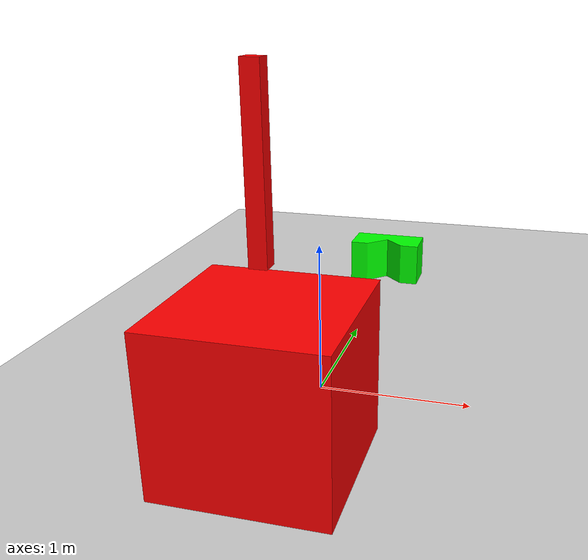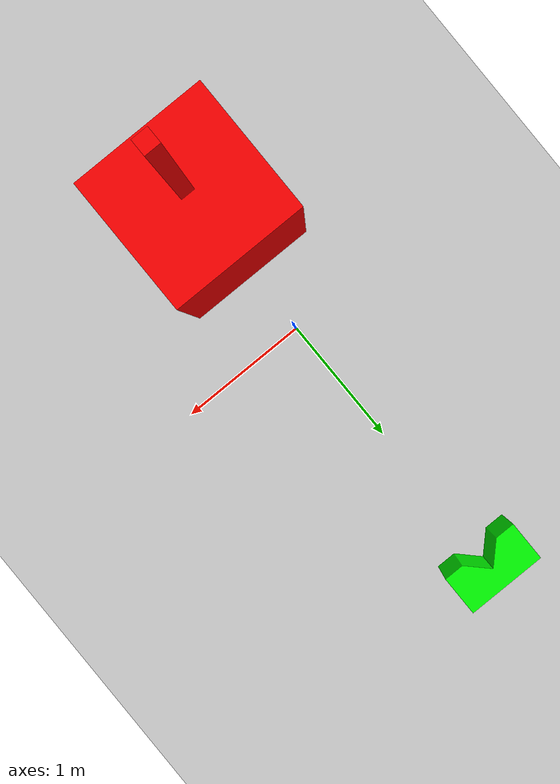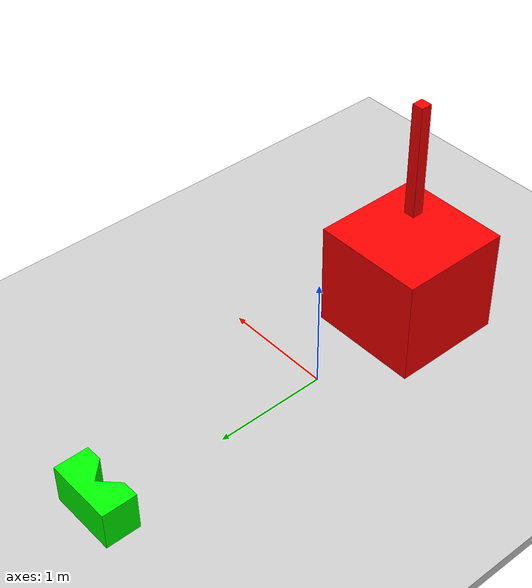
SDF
<sdf version="1.6">
 <world name="visualize_lidar_world">
  <physics name="1ms" type="ignored">
   <max_step_size>0.001</max_step_size>
   <real_time_factor>1.0</real_time_factor>
  </physics>
  <plugin filename="libignition-gazebo-physics-system.so" name="ignition::gazebo::systems::Physics"/>
  <plugin filename="libignition-gazebo-sensors-system.so" name="ignition::gazebo::systems::Sensors">
   <render_engine>ogre2</render_engine>
  </plugin>
  <plugin filename="libignition-gazebo-scene-broadcaster-system.so" name="ignition::gazebo::systems::SceneBroadcaster"/>
  <light name="sun" type="directional">
   <pose>0 0 10 0 0 0</pose>
   <diffuse>0.8 0.8 0.8 1</diffuse>
   <specular>0.2 0.2 0.2 1</specular>
   <attenuation>
    <range>1000</range>
    <constant>0.9</constant>
    <linear>0.01</linear>
    <quadratic>0.001</quadratic>
   </attenuation>
   <direction>-0.5 0.1 -0.9</direction>
  </light>
  <model name="ground_plane">
   <static>true</static>
   <link name="link">
    <collision name="collision"><geometry><box><size>20 20 0.1</size></box></geometry></collision>
    <visual name="visual">
     <geometry><box><size>20 20 0.1</size></box></geometry>
     <material>
      <ambient>0.8 0.8 0.8 1</ambient>
      <diffuse>0.8 0.8 0.8 1</diffuse>
      <specular>0.8 0.8 0.8 1</specular>
     </material>
    </visual>
   </link>
  </model>
  <model name="box">
   <plugin filename="libRotateAxis.so" name="iginition_plugin_lecture::RotateAxis">
    <target_joint>arm_joint</target_joint>
   </plugin>
   <pose>0 -1 0.5 0 0 0</pose>
   <link name="box_link">
    <inertial>
     <inertia><ixx>1</ixx><ixy>0</ixy><ixz>0</ixz><iyy>1</iyy><iyz>0</iyz><izz>1</izz></inertia>
     <mass>1.0</mass>
    </inertial>
    <collision name="box_collision"><geometry><box><size>1 1 1</size></box></geometry></collision>
    <visual name="box_visual">
     <geometry><box><size>1 1 1</size></box></geometry>
     <material><ambient>1 0 0 1</ambient><diffuse>1 0 0 1</diffuse><specular>1 0 0 1</specular></material>
    </visual>
   </link>
   <joint name="arm_joint" type="revolute">
    <pose>0 0 -0.5 0 0 0</pose>
    <parent>box_link</parent>
    <child>arm_link</child>
    <axis><xyz>1 0 0</xyz><limit><upper>1.57</upper><lower>-1.57</lower><effort>1.0</effort></limit></axis>
   </joint>
   <link name="arm_link">
    <pose>0 0 1.2 0 0 0</pose>
    <inertial>
     <inertia><ixx>0.008</ixx><ixy>0</ixy><ixz>0</ixz><iyy>0.008</iyy><iyz>0</iyz><izz>0.00016</izz></inertia>
     <mass>0.1</mass>
    </inertial>
    <collision name="arm_collision"><geometry><box><size>0.1 0.1 1</size></box></geometry></collision>
    <visual name="arm_visual">
     <geometry><box><size>0.1 0.1 1</size></box></geometry>
     <material><ambient>1 0 0 1</ambient><diffuse>1 0 0 1</diffuse><specular>1 0 0 1</specular></material>
    </visual>
   </link>
  </model>
  <include><uri>package://ignition_lecture/models/my_box</uri><pose>0 2 0 0 0 0</pose></include>
 </world>
</sdf>

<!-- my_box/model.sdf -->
<sdf version="1.8">
    <model name="my_box">
      <link name="box_link">
        <inertial>
          <inertia>
            <ixx>1</ixx>
            <ixy>0</ixy>
            <ixz>0</ixz>
            <iyy>1</iyy>
            <iyz>0</iyz>
            <izz>1</izz>
          </inertia>
          <mass>1.0</mass>
        </inertial>
        <collision name="box_collision">
          <geometry>
            <box>
              <size>1 1 1</size>
            </box>
          </geometry>
        </collision>

        <visual name="box_visual">
          <geometry>
            <mesh>
              <uri>meshes/laser_marker.stl</uri>
              <scale>0.001 0.001 0.001</scale>
            </mesh>
          </geometry>
          <material>
            <ambient>0 1 0 1</ambient>
            <diffuse>0 1 0 1</diffuse>
            <specular>0 1 0 1</specular>
          </material>
        </visual>
      </link>
    </model>
</sdf>
